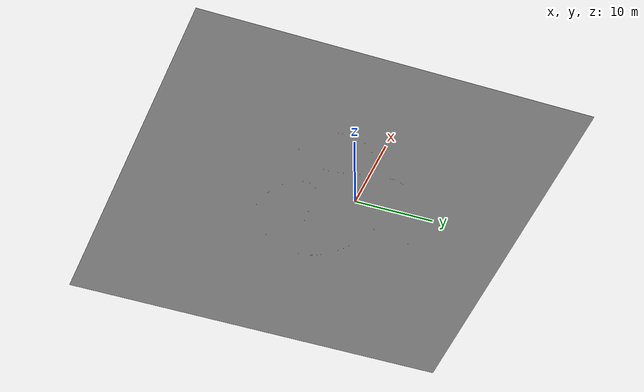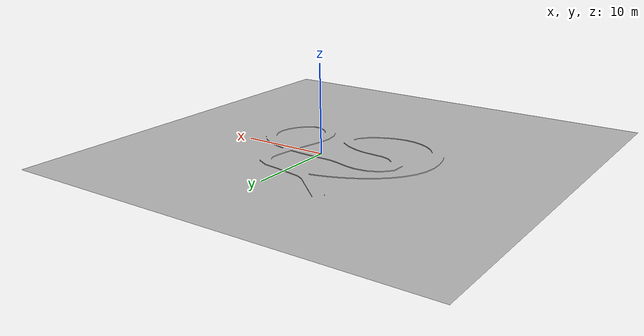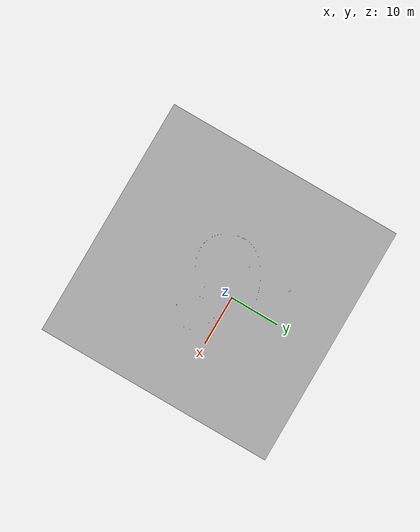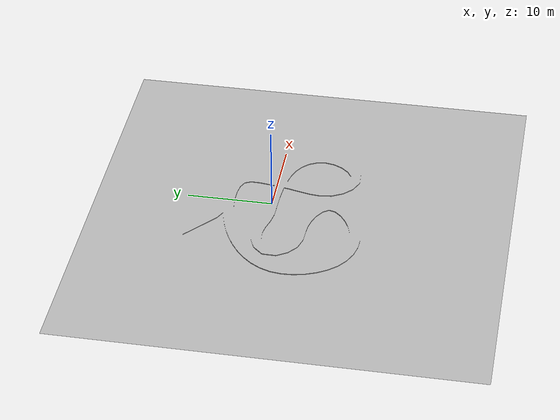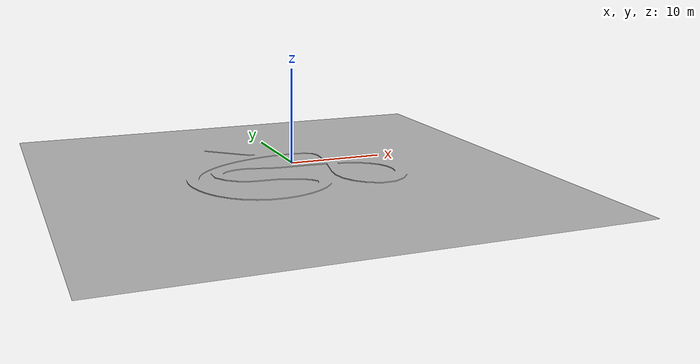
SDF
<?xml version="1.0" encoding="utf-8"?>

<sdf version="1.5">
  <model name="enviroment">
    <static>true</static>
    <link name="base">
      <gravity>0</gravity>
      <collision name="collision">
	<geometry>
	  <mesh>
	    <uri>model://enviroment/meshes/enviroment.dae</uri>
	  </mesh>
	</geometry>
      </collision>
      <visual name="visual">
	<geometry>
	  <mesh>
	    <uri>model://enviroment/meshes/enviroment.dae</uri>
	  </mesh>
	</geometry>
	<material>
	  <script>
	    <uri>model://enviroment/meshes/enviroment.dae</uri>
	  </script>
	</material>
      </visual>
    </link>
  </model>
</sdf>
